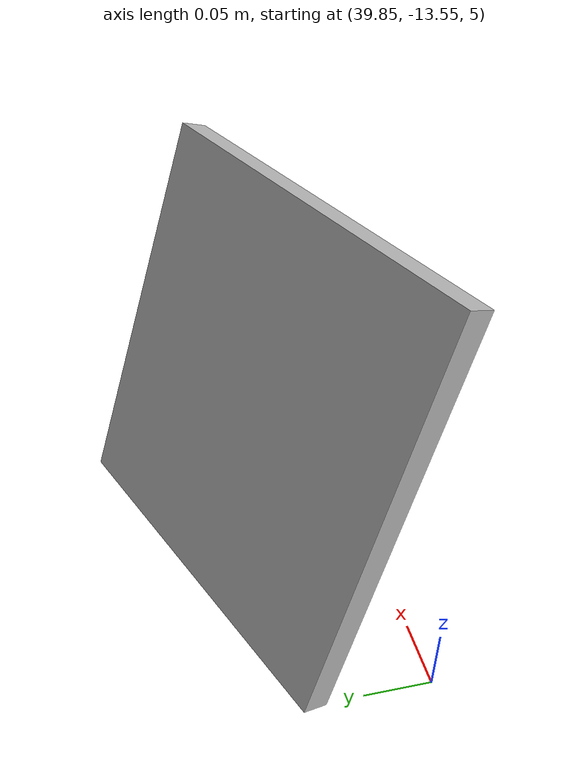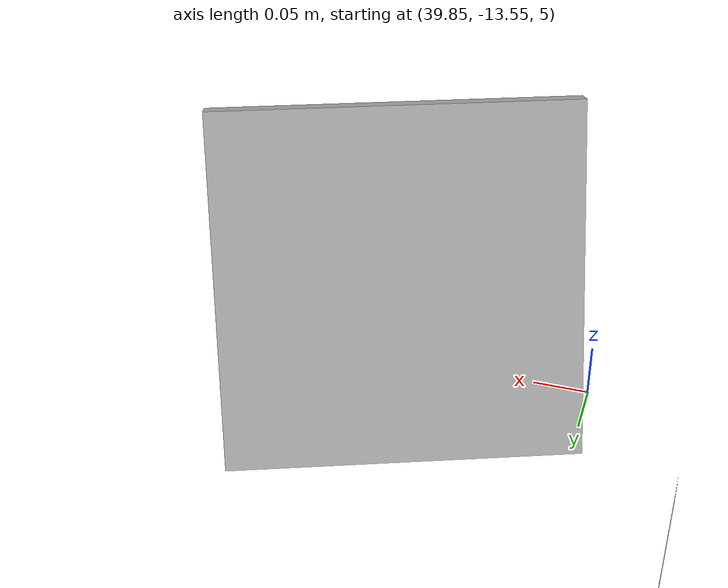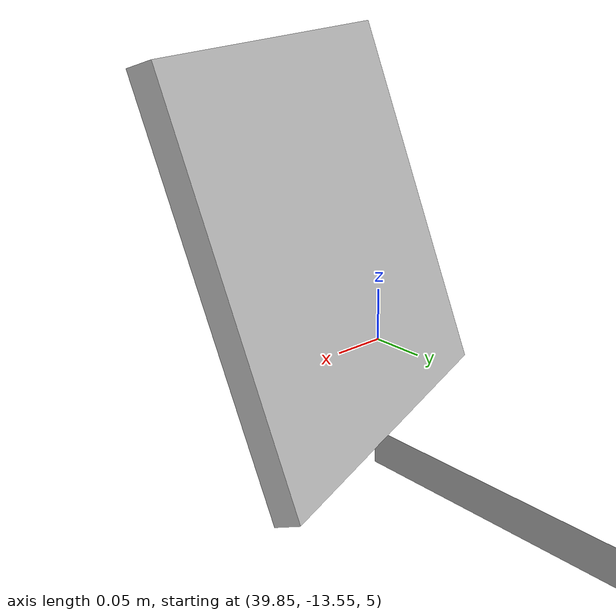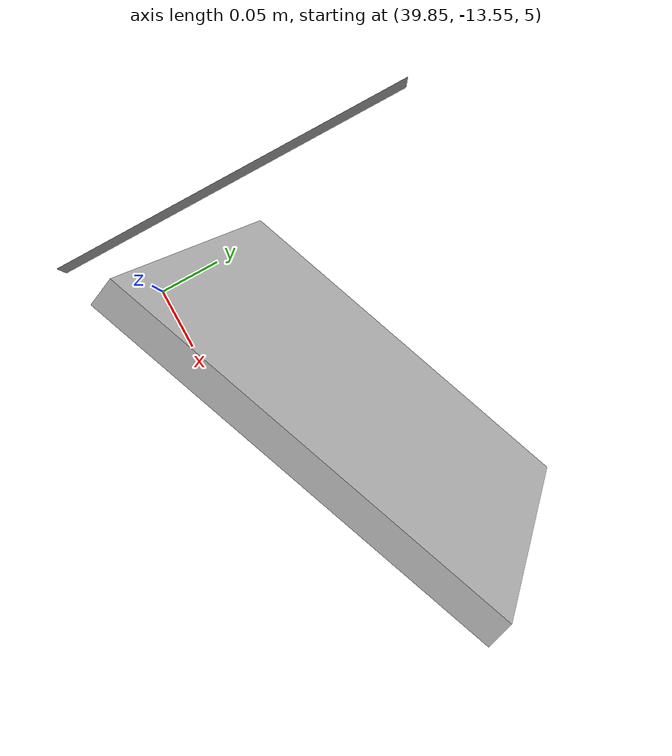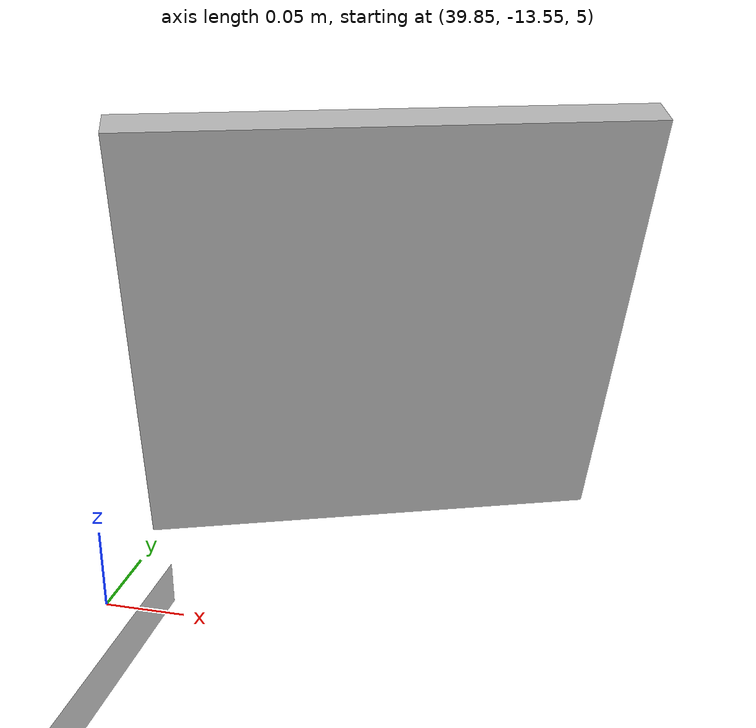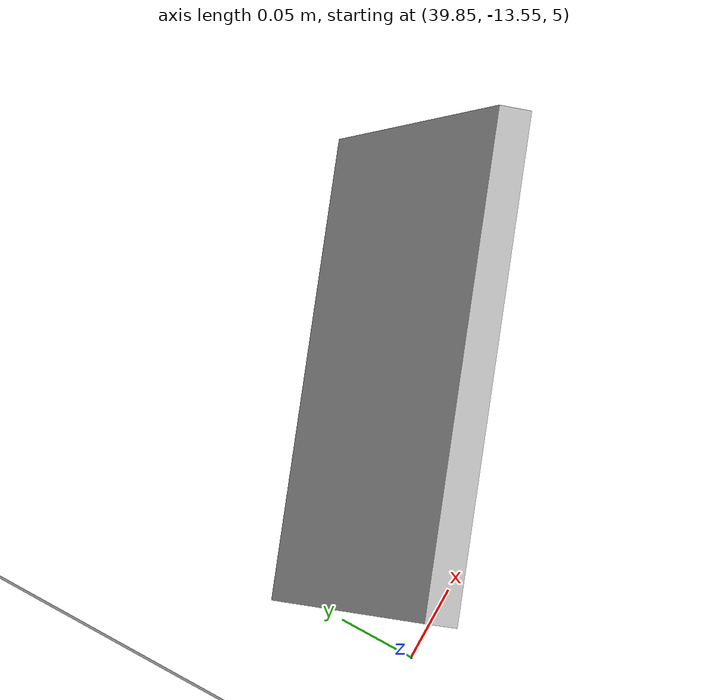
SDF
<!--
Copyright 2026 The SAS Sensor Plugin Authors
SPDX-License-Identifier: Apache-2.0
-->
<?xml version="1.0"?>
<sdf version="1.6">
  <world name="sas_target_only">
    <physics type="ode">
      <max_step_size>0.001</max_step_size>
      <real_time_factor>1.0</real_time_factor>
      <real_time_update_rate>1000</real_time_update_rate>
    </physics>
    <include><uri>model://sun</uri></include>

    <model name="plate_c">
      <static>true</static>
      <pose>20 -14.2606 4.82 0 0 0</pose>
      <link name="link">
        <collision name="c"><geometry><box><size>4 4 0.04</size></box></geometry><laser_retro>1.0</laser_retro></collision>
        <visual name="v"><geometry><box><size>4 4 0.04</size></box></geometry><laser_retro>1.0</laser_retro></visual>
      </link>
    </model>

    <!-- 0.3 m plate, 5 m along-track squint, 15 m, facing the array at x = 35 -->
    <model name="plate_b">
      <static>true</static>
      <pose>40 -13.4551 5.1507 0 0.3292 -1.2108</pose>
      <link name="link">
        <collision name="c"><geometry><box><size>0.02 0.3 0.3</size></box></geometry><laser_retro>1.0</laser_retro></collision>
        <visual name="v"><geometry><box><size>0.02 0.3 0.3</size></box></geometry><laser_retro>1.0</laser_retro></visual>
      </link>
    </model>
  </world>
</sdf>
